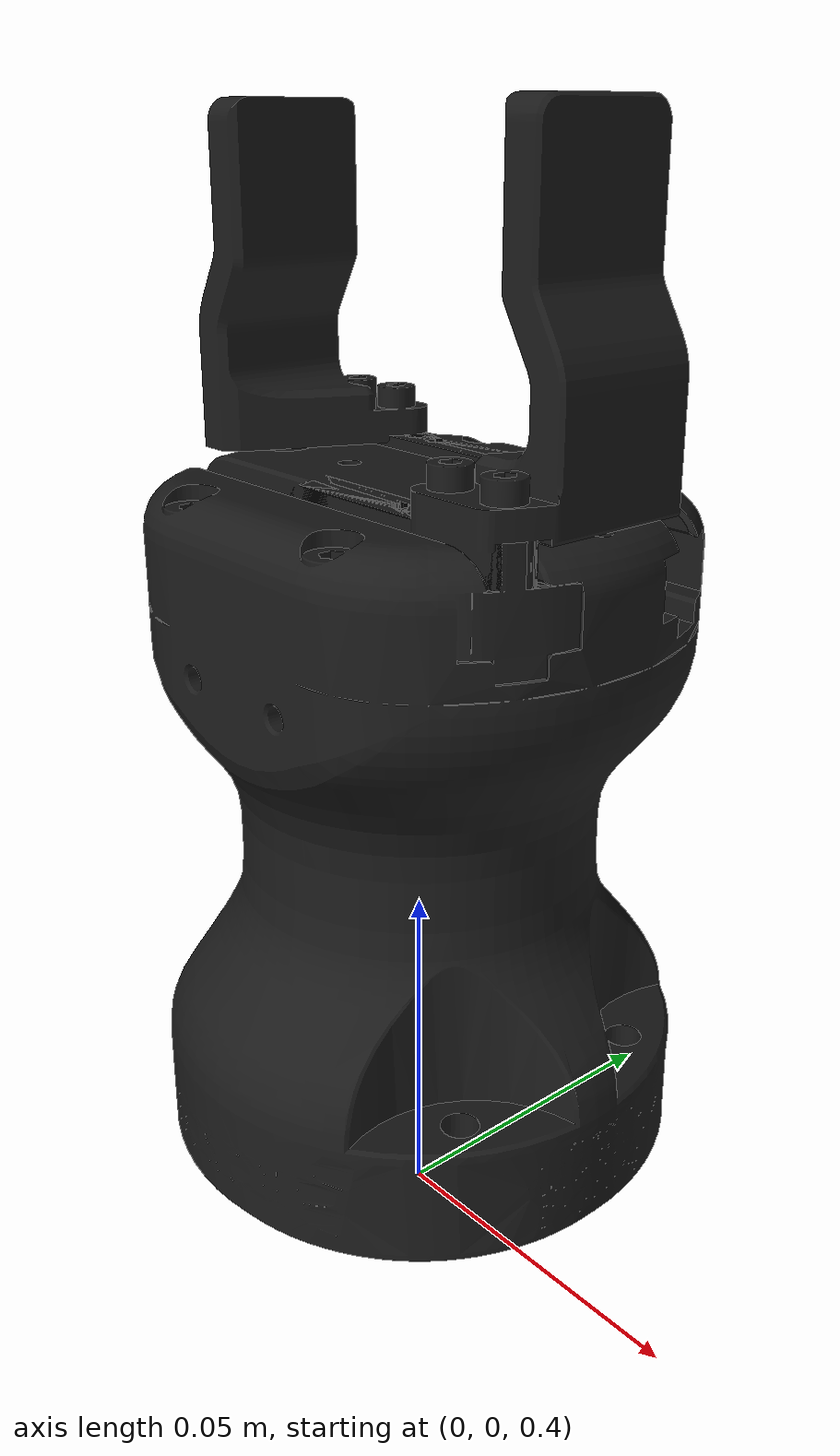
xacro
<?xml version="1.0"?>
<robot xmlns:xacro="http://ros.org/wiki/xacro"
       name="robotiq_hande" >

  <!-- robotiq hande_gripper -->
  <xacro:include filename="$(find robotiq_hande_gripper_description)/urdf/hande_gripper.urdf.xacro" />
  <xacro:robotiq_hande prefix=""/>

  <link name="world" />

  <joint name="world_to_hande_joint" type="fixed">
    <origin rpy="0 1.57 0" xyz="0 0 0.5"/>
    <parent link="world"/>
    <child link="robotiq_hande_base_link"/>
  </joint>

</robot>

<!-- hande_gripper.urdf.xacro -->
<robot xmlns:xacro="http://ros.org/wiki/xacro">

  <xacro:macro name="robotiq_hande"  params="prefix">
    <link name="robotiq_hande_base_link">
      <inertial>
        <origin xyz="8.625E-08 -4.6583E-06 0.03145" rpy="0 0 0" />
        <mass value="0.22652" />
        <inertia ixx="0.00020005" ixy="0" ixz="0" iyy="0.00017832" iyz="0" izz="0.00013478" />
      </inertial>
      <visual>
        <origin xyz="0 0 0" rpy="0 0 1.57" />
        <geometry>
          <mesh filename="package://robotiq_hande_gripper_description/meshes/hand-e.dae" scale="0.001 0.001 0.001"/>
        </geometry>
        <material name="">
          <color rgba="0.1 0.1 0.1 1" />
        </material>
      </visual>
      <collision>
        <origin xyz="0 0 0" rpy="0 0 1.57" />
        <geometry>
          <mesh filename="package://robotiq_hande_gripper_description/meshes/hand-e.dae" scale="0.001 0.001 0.001"/>
        </geometry>
      </collision>
    </link>
    <gazebo reference="robotiq_hande_base_link">
      <material>Gazebo/Grey</material>
      <selfCollide>True</selfCollide>
    </gazebo>

    <link name="finger1">
      <inertial>
        <origin rpy="0 0 0" xyz="8.625E-08 -4.6583E-06 0.03145"/>
        <mass value="0.22652"/>
        <inertia ixx="0.00020005" ixy="0" ixz="0" iyy="0.00017832" iyz="0" izz="0.00013478"/>
      </inertial>
      <visual>
        <origin rpy="0 0 1.57" xyz="0 0 0"/>
        <geometry>
          <mesh filename="package://robotiq_hande_gripper_description/meshes/finger_1.dae" scale="0.001 0.001 0.001"/>
        </geometry>
        <material name="">
          <color rgba="0.1 0.1 0.1 1"/>
        </material>
      </visual>
      <collision>
        <origin rpy="0 0 1.57" xyz="0 0 0"/>
        <geometry>
          <mesh filename="package://robotiq_hande_gripper_description/meshes/finger_1.dae" scale="0.001 0.001 0.001"/>
        </geometry>
      </collision>
    </link>
    <gazebo reference="finger1">
      <material>Gazebo/Grey</material>
      <selfCollide>True</selfCollide>
    </gazebo>

    <link name="finger2">
      <inertial>
        <origin rpy="0 0 0" xyz="8.625E-08 -4.6583E-06 0.03145"/>
        <mass value="0.22652"/>
        <inertia ixx="0.00020005" ixy="0" ixz="0" iyy="0.00017832" iyz="0" izz="0.00013478"/>
      </inertial>
      <visual>
        <origin rpy="0 0 1.57" xyz="0 0 0"/>
        <geometry>
          <mesh filename="package://robotiq_hande_gripper_description/meshes/finger_2.dae" scale="0.001 0.001 0.001"/>
        </geometry>
        <material name="">
          <color rgba="0.1 0.1 0.1 1"/>
        </material>
      </visual>
      <collision>
        <origin rpy="0 0 1.57" xyz="0 0 0"/>
        <geometry>
          <mesh filename="package://robotiq_hande_gripper_description/meshes/finger_2.dae" scale="0.001 0.001 0.001"/>
        </geometry>
      </collision>
    </link>
    <gazebo reference="finger2">
      <material>Gazebo/Grey</material>
      <selfCollide>True</selfCollide>
    </gazebo>

    <joint name="finger1_joint" type="fixed">
      <origin rpy="0 0 0" xyz="0 0 0.0"/>
      <parent link="robotiq_hande_base_link"/>
      <child link="finger1"/>
    </joint>

    <joint name="finger2_joint" type="fixed">
      <origin rpy="0 0 0" xyz="0 0 0.0"/>
      <parent link="robotiq_hande_base_link"/>
      <child link="finger2"/>
    </joint>

  </xacro:macro>
</robot>
